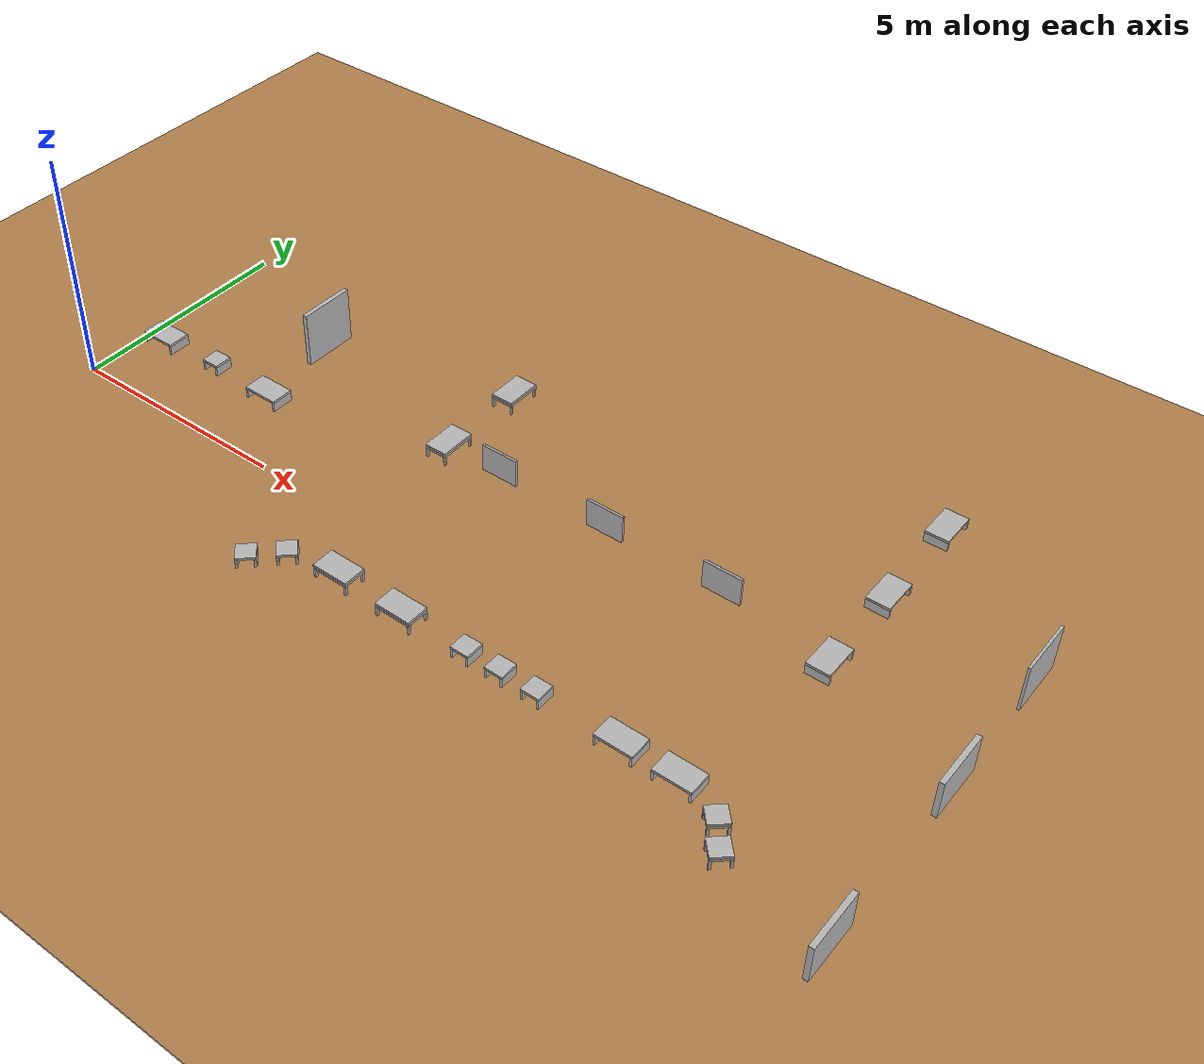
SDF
<sdf version="1.6">
 <world name="default">
  <model name="ground_plane">
   <static>1</static>
   <link name="link">
    <collision name="collision">
     <geometry><plane><normal>0 0 1</normal><size>100 100</size></plane></geometry>
     <surface>
      <contact><collide_bitmask>65535</collide_bitmask></contact>
      <friction><ode><mu>100</mu><mu2>50</mu2></ode></friction>
     </surface>
    </collision>
    <visual name="visual">
     <cast_shadows>0</cast_shadows>
     <geometry><plane><normal>0 0 1</normal><size>100 100</size></plane></geometry>
     <material>
      <script><uri>file://media/materials/scripts/gazebo.material</uri><name>Gazebo/Grey</name></script>
     </material>
    </visual>
   </link>
  </model>
  <model name="wood_floor_100">
   <pose>1.0299 1.49278 0 0 -0 0</pose>
   <link name="Wall_9">
    <collision name="Wall_9_Collision">
     <geometry><box><size>100.01 100 0.01</size></box></geometry>
     <pose>0 0 0.005 0 -0 0</pose>
    </collision>
    <visual name="Wall_9_Visual">
     <pose>0 0 0.005 0 -0 0</pose>
     <geometry><box><size>100.01 100 0.01</size></box></geometry>
     <material>
      <script><uri>file://media/materials/scripts/gazebo.material</uri><name>Gazebo/Wood</name></script>
      <ambient>1 1 1 1</ambient>
     </material>
     <meta><layer>0</layer></meta>
    </visual>
    <pose>-1e-06 -1e-06 0 0 -0 0</pose>
   </link>
   <static>1</static>
  </model>
  <model name="chair1">
   <link name="link">
    <inertial>
     <mass>3</mass>
     <inertia><ixx>1</ixx><ixy>0</ixy><ixz>0</ixz><iyy>1</iyy><iyz>0</iyz><izz>1</izz></inertia>
    </inertial>
    <collision name="left">
     <pose>0 0 0.2 0 -0 1.57</pose>
     <geometry><box><size>0.5 0.05 0.2</size></box></geometry>
    </collision>
    <visual name="visual1">
     <pose>0 0 0.2 0 -0 1.57</pose>
     <geometry><box><size>0.5 0.05 0.2</size></box></geometry>
     <material>
      <script>
       <uri>model://chair1/materials/test_texture_leg.material</uri>
       <name>TestTexturechairleg1</name>
      </script>
     </material>
    </visual>
    <collision name="right">
     <pose>0.75 0 0.2 0 -0 1.57</pose>
     <geometry><box><size>0.5 0.05 0.2</size></box></geometry>
    </collision>
    <visual name="visual2">
     <pose>0.75 0 0.2 0 -0 1.57</pose>
     <geometry><box><size>0.5 0.05 0.2</size></box></geometry>
     <material>
      <script>
       <uri>model://chair1/materials/test_texture_leg.material</uri>
       <name>TestTexturechairleg1</name>
      </script>
     </material>
    </visual>
    <collision name="top">
     <pose>0.375 0 0.325 0 -0 0</pose>
     <geometry><box><size>0.8 0.5 0.05</size></box></geometry>
    </collision>
    <visual name="visual3">
     <pose>0.375 0 0.325 0 -0 0</pose>
     <geometry><box><size>0.8 0.5 0.05</size></box></geometry>
     <material>
      <script>
       <uri>model://chair1/materials/test_texture_plane.material</uri>
       <name>TestTexturechairplane1</name>
      </script>
     </material>
    </visual>
   </link>
   <pose>0.13712 1.60346 -0.089999 2e-06 -0 -0.000142</pose>
  </model>
  <model name="chair2">
   <link name="link">
    <inertial>
     <mass>1.5</mass>
     <inertia><ixx>1</ixx><ixy>0</ixy><ixz>0</ixz><iyy>1</iyy><iyz>0</iyz><izz>1</izz></inertia>
    </inertial>
    <collision name="left">
     <pose>0 0 0.2 0 -0 1.57</pose>
     <geometry><box><size>0.4 0.05 0.2</size></box></geometry>
    </collision>
    <visual name="visual1">
     <pose>0 0 0.2 0 -0 1.57</pose>
     <geometry><box><size>0.4 0.05 0.2</size></box></geometry>
     <material>
      <script>
       <uri>model://chair2/materials/test_texture_leg.material</uri>
       <name>TestTexturechairleg2</name>
      </script>
     </material>
    </visual>
    <collision name="right">
     <pose>0.35 0 0.2 0 -0 1.57</pose>
     <geometry><box><size>0.4 0.05 0.2</size></box></geometry>
    </collision>
    <visual name="visual2">
     <pose>0.35 0 0.2 0 -0 1.57</pose>
     <geometry><box><size>0.4 0.05 0.2</size></box></geometry>
     <material>
      <script>
       <uri>model://chair2/materials/test_texture_leg.material</uri>
       <name>TestTexturechairleg2</name>
      </script>
     </material>
    </visual>
    <collision name="top">
     <pose>0.175 0 0.325 0 -0 0</pose>
     <geometry><box><size>0.4 0.4 0.05</size></box></geometry>
    </collision>
    <visual name="visual3">
     <pose>0.175 0 0.325 0 -0 0</pose>
     <geometry><box><size>0.4 0.4 0.05</size></box></geometry>
     <material>
      <script>
       <uri>model://chair2/materials/test_texture_plane.material</uri>
       <name>TestTexturechairplane2</name>
      </script>
     </material>
    </visual>
   </link>
   <pose>1.8308 1.65353 -0.09 0 0 -3.6e-05</pose>
  </model>
  <model name="chair1_0">
   <link name="link">
    <inertial>
     <mass>3</mass>
     <inertia><ixx>1</ixx><ixy>0</ixy><ixz>0</ixz><iyy>1</iyy><iyz>0</iyz><izz>1</izz></inertia>
    </inertial>
    <collision name="left">
     <pose>0 0 0.2 0 -0 1.57</pose>
     <geometry><box><size>0.5 0.05 0.2</size></box></geometry>
    </collision>
    <visual name="visual1">
     <pose>0 0 0.2 0 -0 1.57</pose>
     <geometry><box><size>0.5 0.05 0.2</size></box></geometry>
     <material>
      <script>
       <uri>model://chair1/materials/test_texture_leg.material</uri>
       <name>TestTexturechairleg1</name>
      </script>
     </material>
    </visual>
    <collision name="right">
     <pose>0.75 0 0.2 0 -0 1.57</pose>
     <geometry><box><size>0.5 0.05 0.2</size></box></geometry>
    </collision>
    <visual name="visual2">
     <pose>0.75 0 0.2 0 -0 1.57</pose>
     <geometry><box><size>0.5 0.05 0.2</size></box></geometry>
     <material>
      <script>
       <uri>model://chair1/materials/test_texture_leg.material</uri>
       <name>TestTexturechairleg1</name>
      </script>
     </material>
    </visual>
    <collision name="top">
     <pose>0.375 0 0.325 0 -0 0</pose>
     <geometry><box><size>0.8 0.5 0.05</size></box></geometry>
    </collision>
    <visual name="visual3">
     <pose>0.375 0 0.325 0 -0 0</pose>
     <geometry><box><size>0.8 0.5 0.05</size></box></geometry>
     <material>
      <script>
       <uri>model://chair1/materials/test_texture_plane.material</uri>
       <name>TestTexturechairplane1</name>
      </script>
     </material>
    </visual>
   </link>
   <pose>3.20048 1.6029 -0.090007 -2e-06 -1e-06 -0.000678</pose>
  </model>
  <model name="chair2_0">
   <link name="link">
    <inertial>
     <mass>1.5</mass>
     <inertia><ixx>1</ixx><ixy>0</ixy><ixz>0</ixz><iyy>1</iyy><iyz>0</iyz><izz>1</izz></inertia>
    </inertial>
    <collision name="left">
     <pose>0 0 0.2 0 -0 1.57</pose>
     <geometry><box><size>0.4 0.05 0.2</size></box></geometry>
    </collision>
    <visual name="visual1">
     <pose>0 0 0.2 0 -0 1.57</pose>
     <geometry><box><size>0.4 0.05 0.2</size></box></geometry>
     <material>
      <script>
       <uri>model://chair2/materials/test_texture_leg.material</uri>
       <name>TestTexturechairleg2</name>
      </script>
     </material>
    </visual>
    <collision name="right">
     <pose>0.35 0 0.2 0 -0 1.57</pose>
     <geometry><box><size>0.4 0.05 0.2</size></box></geometry>
    </collision>
    <visual name="visual2">
     <pose>0.35 0 0.2 0 -0 1.57</pose>
     <geometry><box><size>0.4 0.05 0.2</size></box></geometry>
     <material>
      <script>
       <uri>model://chair2/materials/test_texture_leg.material</uri>
       <name>TestTexturechairleg2</name>
      </script>
     </material>
    </visual>
    <collision name="top">
     <pose>0.175 0 0.325 0 -0 0</pose>
     <geometry><box><size>0.4 0.4 0.05</size></box></geometry>
    </collision>
    <visual name="visual3">
     <pose>0.175 0 0.325 0 -0 0</pose>
     <geometry><box><size>0.4 0.4 0.05</size></box></geometry>
     <material>
      <script>
       <uri>model://chair2/materials/test_texture_plane.material</uri>
       <name>TestTexturechairplane2</name>
      </script>
     </material>
    </visual>
   </link>
   <pose>11.1966 -1.36081 -0.09001 0 -0 -6e-06</pose>
  </model>
  <model name="chair2_1">
   <link name="link">
    <inertial>
     <mass>1.5</mass>
     <inertia><ixx>1</ixx><ixy>0</ixy><ixz>0</ixz><iyy>1</iyy><iyz>0</iyz><izz>1</izz></inertia>
    </inertial>
    <collision name="left">
     <pose>0 0 0.2 0 -0 1.57</pose>
     <geometry><box><size>0.4 0.05 0.2</size></box></geometry>
    </collision>
    <visual name="visual1">
     <pose>0 0 0.2 0 -0 1.57</pose>
     <geometry><box><size>0.4 0.05 0.2</size></box></geometry>
     <material>
      <script>
       <uri>model://chair2/materials/test_texture_leg.material</uri>
       <name>TestTexturechairleg2</name>
      </script>
     </material>
    </visual>
    <collision name="right">
     <pose>0.35 0 0.2 0 -0 1.57</pose>
     <geometry><box><size>0.4 0.05 0.2</size></box></geometry>
    </collision>
    <visual name="visual2">
     <pose>0.35 0 0.2 0 -0 1.57</pose>
     <geometry><box><size>0.4 0.05 0.2</size></box></geometry>
     <material>
      <script>
       <uri>model://chair2/materials/test_texture_leg.material</uri>
       <name>TestTexturechairleg2</name>
      </script>
     </material>
    </visual>
    <collision name="top">
     <pose>0.175 0 0.325 0 -0 0</pose>
     <geometry><box><size>0.4 0.4 0.05</size></box></geometry>
    </collision>
    <visual name="visual3">
     <pose>0.175 0 0.325 0 -0 0</pose>
     <geometry><box><size>0.4 0.4 0.05</size></box></geometry>
     <material>
      <script>
       <uri>model://chair2/materials/test_texture_plane.material</uri>
       <name>TestTexturechairplane2</name>
      </script>
     </material>
    </visual>
   </link>
   <pose>11.9632 -1.36081 -0.09 0 0 -5e-06</pose>
  </model>
  <model name="chair2_2">
   <link name="link">
    <inertial>
     <mass>1.5</mass>
     <inertia><ixx>1</ixx><ixy>0</ixy><ixz>0</ixz><iyy>1</iyy><iyz>0</iyz><izz>1</izz></inertia>
    </inertial>
    <collision name="left">
     <pose>0 0 0.2 0 -0 1.57</pose>
     <geometry><box><size>0.4 0.05 0.2</size></box></geometry>
    </collision>
    <visual name="visual1">
     <pose>0 0 0.2 0 -0 1.57</pose>
     <geometry><box><size>0.4 0.05 0.2</size></box></geometry>
     <material>
      <script>
       <uri>model://chair2/materials/test_texture_leg.material</uri>
       <name>TestTexturechairleg2</name>
      </script>
     </material>
    </visual>
    <collision name="right">
     <pose>0.35 0 0.2 0 -0 1.57</pose>
     <geometry><box><size>0.4 0.05 0.2</size></box></geometry>
    </collision>
    <visual name="visual2">
     <pose>0.35 0 0.2 0 -0 1.57</pose>
     <geometry><box><size>0.4 0.05 0.2</size></box></geometry>
     <material>
      <script>
       <uri>model://chair2/materials/test_texture_leg.material</uri>
       <name>TestTexturechairleg2</name>
      </script>
     </material>
    </visual>
    <collision name="top">
     <pose>0.175 0 0.325 0 -0 0</pose>
     <geometry><box><size>0.4 0.4 0.05</size></box></geometry>
    </collision>
    <visual name="visual3">
     <pose>0.175 0 0.325 0 -0 0</pose>
     <geometry><box><size>0.4 0.4 0.05</size></box></geometry>
     <material>
      <script>
       <uri>model://chair2/materials/test_texture_plane.material</uri>
       <name>TestTexturechairplane2</name>
      </script>
     </material>
    </visual>
   </link>
   <pose>12.7574 -1.36081 -0.09 0 -0 0</pose>
  </model>
  <model name="chair1_3">
   <link name="link">
    <inertial>
     <mass>3</mass>
     <inertia><ixx>1</ixx><ixy>0</ixy><ixz>0</ixz><iyy>1</iyy><iyz>0</iyz><izz>1</izz></inertia>
    </inertial>
    <collision name="left">
     <pose>0 0 0.2 0 -0 1.57</pose>
     <geometry><box><size>0.5 0.05 0.2</size></box></geometry>
    </collision>
    <visual name="visual1">
     <pose>0 0 0.2 0 -0 1.57</pose>
     <geometry><box><size>0.5 0.05 0.2</size></box></geometry>
     <material>
      <script>
       <uri>model://chair1/materials/test_texture_leg.material</uri>
       <name>TestTexturechairleg1</name>
      </script>
     </material>
    </visual>
    <collision name="right">
     <pose>0.75 0 0.2 0 -0 1.57</pose>
     <geometry><box><size>0.5 0.05 0.2</size></box></geometry>
    </collision>
    <visual name="visual2">
     <pose>0.75 0 0.2 0 -0 1.57</pose>
     <geometry><box><size>0.5 0.05 0.2</size></box></geometry>
     <material>
      <script>
       <uri>model://chair1/materials/test_texture_leg.material</uri>
       <name>TestTexturechairleg1</name>
      </script>
     </material>
    </visual>
    <collision name="top">
     <pose>0.375 0 0.325 0 -0 0</pose>
     <geometry><box><size>0.8 0.5 0.05</size></box></geometry>
    </collision>
    <visual name="visual3">
     <pose>0.375 0 0.325 0 -0 0</pose>
     <geometry><box><size>0.8 0.5 0.05</size></box></geometry>
     <material>
      <script>
       <uri>model://chair1/materials/test_texture_plane.material</uri>
       <name>TestTexturechairplane1</name>
      </script>
     </material>
    </visual>
   </link>
   <pose>14.3179 -1.33335 -0.090007 -2e-06 -1e-06 0.00158</pose>
  </model>
  <model name="chair1_4">
   <link name="link">
    <inertial>
     <mass>3</mass>
     <inertia><ixx>1</ixx><ixy>0</ixy><ixz>0</ixz><iyy>1</iyy><iyz>0</iyz><izz>1</izz></inertia>
    </inertial>
    <collision name="left">
     <pose>0 0 0.2 0 -0 1.57</pose>
     <geometry><box><size>0.5 0.05 0.2</size></box></geometry>
    </collision>
    <visual name="visual1">
     <pose>0 0 0.2 0 -0 1.57</pose>
     <geometry><box><size>0.5 0.05 0.2</size></box></geometry>
     <material>
      <script>
       <uri>model://chair1/materials/test_texture_leg.material</uri>
       <name>TestTexturechairleg1</name>
      </script>
     </material>
    </visual>
    <collision name="right">
     <pose>0.75 0 0.2 0 -0 1.57</pose>
     <geometry><box><size>0.5 0.05 0.2</size></box></geometry>
    </collision>
    <visual name="visual2">
     <pose>0.75 0 0.2 0 -0 1.57</pose>
     <geometry><box><size>0.5 0.05 0.2</size></box></geometry>
     <material>
      <script>
       <uri>model://chair1/materials/test_texture_leg.material</uri>
       <name>TestTexturechairleg1</name>
      </script>
     </material>
    </visual>
    <collision name="top">
     <pose>0.375 0 0.325 0 -0 0</pose>
     <geometry><box><size>0.8 0.5 0.05</size></box></geometry>
    </collision>
    <visual name="visual3">
     <pose>0.375 0 0.325 0 -0 0</pose>
     <geometry><box><size>0.8 0.5 0.05</size></box></geometry>
     <material>
      <script>
       <uri>model://chair1/materials/test_texture_plane.material</uri>
       <name>TestTexturechairplane1</name>
      </script>
     </material>
    </visual>
   </link>
   <pose>15.4952 -1.33335 -0.089999 2e-06 -0 0.001563</pose>
  </model>
  <model name="chair4">
   <link name="link">
    <inertial>
     <mass>1.5</mass>
     <inertia><ixx>1</ixx><ixy>0</ixy><ixz>0</ixz><iyy>1</iyy><iyz>0</iyz><izz>1</izz></inertia>
    </inertial>
    <collision name="left1">
     <pose>0 0.175 0.2 0 -0 1.57</pose>
     <geometry><box><size>0.05 0.05 0.2</size></box></geometry>
    </collision>
    <visual name="visual1">
     <pose>0 0.175 0.2 0 -0 1.57</pose>
     <geometry><box><size>0.05 0.05 0.2</size></box></geometry>
     <material>
      <script>
       <uri>model://chair4/materials/test_texture_leg.material</uri>
       <name>TestTexturechairleg4</name>
      </script>
     </material>
    </visual>
    <collision name="right1">
     <pose>0.35 0.175 0.2 0 -0 1.57</pose>
     <geometry><box><size>0.05 0.05 0.2</size></box></geometry>
    </collision>
    <visual name="visual2">
     <pose>0.35 0.175 0.2 0 -0 1.57</pose>
     <geometry><box><size>0.05 0.05 0.2</size></box></geometry>
     <material>
      <script>
       <uri>model://chair4/materials/test_texture_leg.material</uri>
       <name>TestTexturechairleg4</name>
      </script>
     </material>
    </visual>
    <collision name="left2">
     <pose>0 -0.175 0.2 0 -0 1.57</pose>
     <geometry><box><size>0.05 0.05 0.2</size></box></geometry>
    </collision>
    <visual name="visual3">
     <pose>0 -0.175 0.2 0 -0 1.57</pose>
     <geometry><box><size>0.05 0.05 0.2</size></box></geometry>
     <material>
      <script>
       <uri>model://chair4/materials/test_texture_leg.material</uri>
       <name>TestTexturechairleg4</name>
      </script>
     </material>
    </visual>
    <collision name="right2">
     <pose>0.35 -0.175 0.2 0 -0 1.57</pose>
     <geometry><box><size>0.05 0.05 0.2</size></box></geometry>
    </collision>
    <visual name="visual4">
     <pose>0.35 -0.175 0.2 0 -0 1.57</pose>
     <geometry><box><size>0.05 0.05 0.2</size></box></geometry>
     <material>
      <script>
       <uri>model://chair4/materials/test_texture_leg.material</uri>
       <name>TestTexturechairleg4</name>
      </script>
     </material>
    </visual>
    <collision name="top">
     <pose>0.175 0 0.375 0 -0 0</pose>
     <geometry><box><size>0.4 0.4 0.05</size></box></geometry>
    </collision>
    <visual name="visual11">
     <pose>0.175 0 0.375 0 -0 0</pose>
     <geometry><box><size>0.4 0.4 0.05</size></box></geometry>
     <material>
      <script>
       <uri>model://chair4/materials/test_texture_plane.material</uri>
       <name>TestTexturechairplane4</name>
      </script>
     </material>
    </visual>
    <collision name="top2">
     <pose>0.175 0 0.325 0 -0 0</pose>
     <geometry><box><size>0.4 0.4 0.05</size></box></geometry>
    </collision>
    <visual name="visual12">
     <pose>0.175 0 0.325 0 -0 0</pose>
     <geometry><box><size>0.4 0.4 0.05</size></box></geometry>
     <material>
      <script>
       <uri>model://chair4/materials/test_texture_leg.material</uri>
       <name>TestTexturechairleg4</name>
      </script>
     </material>
    </visual>
   </link>
   <pose>16.7096 -1.8199 -0.09 -0 -1e-06 0.749723</pose>
  </model>
  <model name="chair4_clone">
   <link name="link">
    <inertial>
     <mass>1.5</mass>
     <inertia><ixx>1</ixx><ixy>0</ixy><ixz>0</ixz><iyy>1</iyy><iyz>0</iyz><izz>1</izz></inertia>
    </inertial>
    <collision name="left1">
     <pose>0 0.175 0.2 0 -0 1.57</pose>
     <geometry><box><size>0.05 0.05 0.2</size></box></geometry>
    </collision>
    <visual name="visual1">
     <pose>0 0.175 0.2 0 -0 1.57</pose>
     <geometry><box><size>0.05 0.05 0.2</size></box></geometry>
     <material>
      <script>
       <uri>model://chair4/materials/test_texture_leg.material</uri>
       <name>TestTexturechairleg4</name>
      </script>
     </material>
    </visual>
    <collision name="right1">
     <pose>0.35 0.175 0.2 0 -0 1.57</pose>
     <geometry><box><size>0.05 0.05 0.2</size></box></geometry>
    </collision>
    <visual name="visual2">
     <pose>0.35 0.175 0.2 0 -0 1.57</pose>
     <geometry><box><size>0.05 0.05 0.2</size></box></geometry>
     <material>
      <script>
       <uri>model://chair4/materials/test_texture_leg.material</uri>
       <name>TestTexturechairleg4</name>
      </script>
     </material>
    </visual>
    <collision name="left2">
     <pose>0 -0.175 0.2 0 -0 1.57</pose>
     <geometry><box><size>0.05 0.05 0.2</size></box></geometry>
    </collision>
    <visual name="visual3">
     <pose>0 -0.175 0.2 0 -0 1.57</pose>
     <geometry><box><size>0.05 0.05 0.2</size></box></geometry>
     <material>
      <script>
       <uri>model://chair4/materials/test_texture_leg.material</uri>
       <name>TestTexturechairleg4</name>
      </script>
     </material>
    </visual>
    <collision name="right2">
     <pose>0.35 -0.175 0.2 0 -0 1.57</pose>
     <geometry><box><size>0.05 0.05 0.2</size></box></geometry>
    </collision>
    <visual name="visual4">
     <pose>0.35 -0.175 0.2 0 -0 1.57</pose>
     <geometry><box><size>0.05 0.05 0.2</size></box></geometry>
     <material>
      <script>
       <uri>model://chair4/materials/test_texture_leg.material</uri>
       <name>TestTexturechairleg4</name>
      </script>
     </material>
    </visual>
    <collision name="top">
     <pose>0.175 0 0.375 0 -0 0</pose>
     <geometry><box><size>0.4 0.4 0.05</size></box></geometry>
    </collision>
    <visual name="visual11">
     <pose>0.175 0 0.375 0 -0 0</pose>
     <geometry><box><size>0.4 0.4 0.05</size></box></geometry>
     <material>
      <script>
       <uri>model://chair4/materials/test_texture_plane.material</uri>
       <name>TestTexturechairplane4</name>
      </script>
     </material>
    </visual>
    <collision name="top2">
     <pose>0.175 0 0.325 0 -0 0</pose>
     <geometry><box><size>0.4 0.4 0.05</size></box></geometry>
    </collision>
    <visual name="visual12">
     <pose>0.175 0 0.325 0 -0 0</pose>
     <geometry><box><size>0.4 0.4 0.05</size></box></geometry>
     <material>
      <script>
       <uri>model://chair4/materials/test_texture_leg.material</uri>
       <name>TestTexturechairleg4</name>
      </script>
     </material>
    </visual>
   </link>
   <pose>17.0857 -2.31775 -0.090006 -1e-06 -1e-06 0.749733</pose>
  </model>
  <model name="chair2_3_clone_0">
   <link name="link">
    <inertial>
     <mass>1.5</mass>
     <inertia><ixx>1</ixx><ixy>0</ixy><ixz>0</ixz><iyy>1</iyy><iyz>0</iyz><izz>1</izz></inertia>
    </inertial>
    <collision name="left">
     <pose>0 0 0.2 0 -0 1.57</pose>
     <geometry><box><size>0.4 0.05 0.2</size></box></geometry>
    </collision>
    <visual name="visual1">
     <pose>0 0 0.2 0 -0 1.57</pose>
     <geometry><box><size>0.4 0.05 0.2</size></box></geometry>
     <material>
      <script>
       <uri>model://chair2/materials/test_texture_leg.material</uri>
       <name>TestTexturechairleg2</name>
      </script>
     </material>
    </visual>
    <collision name="right">
     <pose>0.35 0 0.2 0 -0 1.57</pose>
     <geometry><box><size>0.4 0.05 0.2</size></box></geometry>
    </collision>
    <visual name="visual2">
     <pose>0.35 0 0.2 0 -0 1.57</pose>
     <geometry><box><size>0.4 0.05 0.2</size></box></geometry>
     <material>
      <script>
       <uri>model://chair2/materials/test_texture_leg.material</uri>
       <name>TestTexturechairleg2</name>
      </script>
     </material>
    </visual>
    <collision name="top">
     <pose>0.175 0 0.325 0 -0 0</pose>
     <geometry><box><size>0.4 0.4 0.05</size></box></geometry>
    </collision>
    <visual name="visual3">
     <pose>0.175 0 0.325 0 -0 0</pose>
     <geometry><box><size>0.4 0.4 0.05</size></box></geometry>
     <material>
      <script>
       <uri>model://chair2/materials/test_texture_plane.material</uri>
       <name>TestTexturechairplane2</name>
      </script>
     </material>
    </visual>
   </link>
   <pose>7.07857 -1.66644 -0.090009 0 -0 0.750017</pose>
  </model>
  <model name="chair2_3_clone_clone">
   <link name="link">
    <inertial>
     <mass>1.5</mass>
     <inertia><ixx>1</ixx><ixy>0</ixy><ixz>0</ixz><iyy>1</iyy><iyz>0</iyz><izz>1</izz></inertia>
    </inertial>
    <collision name="left">
     <pose>0 0 0.2 0 -0 1.57</pose>
     <geometry><box><size>0.4 0.05 0.2</size></box></geometry>
    </collision>
    <visual name="visual1">
     <pose>0 0 0.2 0 -0 1.57</pose>
     <geometry><box><size>0.4 0.05 0.2</size></box></geometry>
     <material>
      <script>
       <uri>model://chair2/materials/test_texture_leg.material</uri>
       <name>TestTexturechairleg2</name>
      </script>
     </material>
    </visual>
    <collision name="right">
     <pose>0.35 0 0.2 0 -0 1.57</pose>
     <geometry><box><size>0.4 0.05 0.2</size></box></geometry>
    </collision>
    <visual name="visual2">
     <pose>0.35 0 0.2 0 -0 1.57</pose>
     <geometry><box><size>0.4 0.05 0.2</size></box></geometry>
     <material>
      <script>
       <uri>model://chair2/materials/test_texture_leg.material</uri>
       <name>TestTexturechairleg2</name>
      </script>
     </material>
    </visual>
    <collision name="top">
     <pose>0.175 0 0.325 0 -0 0</pose>
     <geometry><box><size>0.4 0.4 0.05</size></box></geometry>
    </collision>
    <visual name="visual3">
     <pose>0.175 0 0.325 0 -0 0</pose>
     <geometry><box><size>0.4 0.4 0.05</size></box></geometry>
     <material>
      <script>
       <uri>model://chair2/materials/test_texture_plane.material</uri>
       <name>TestTexturechairplane2</name>
      </script>
     </material>
    </visual>
   </link>
   <pose>6.54207 -2.20214 -0.090009 0 -0 0.750002</pose>
  </model>
  <model name="chair3_clone_2">
   <link name="link">
    <inertial>
     <mass>3</mass>
     <inertia><ixx>1</ixx><ixy>0</ixy><ixz>0</ixz><iyy>1</iyy><iyz>0</iyz><izz>1</izz></inertia>
    </inertial>
    <collision name="left1">
     <pose>0 0.225 0.2 0 -0 1.57</pose>
     <geometry><box><size>0.05 0.05 0.2</size></box></geometry>
    </collision>
    <visual name="visual1">
     <pose>0 0.225 0.2 0 -0 1.57</pose>
     <geometry><box><size>0.05 0.05 0.2</size></box></geometry>
     <material>
      <script>
       <uri>model://chair3/materials/test_texture_leg.material</uri>
       <name>TestTexturechairleg3</name>
      </script>
     </material>
    </visual>
    <collision name="right1">
     <pose>0.75 0.225 0.2 0 -0 1.57</pose>
     <geometry><box><size>0.05 0.05 0.2</size></box></geometry>
    </collision>
    <visual name="visual2">
     <pose>0.75 0.225 0.2 0 -0 1.57</pose>
     <geometry><box><size>0.05 0.05 0.2</size></box></geometry>
     <material>
      <script>
       <uri>model://chair3/materials/test_texture_leg.material</uri>
       <name>TestTexturechairleg3</name>
      </script>
     </material>
    </visual>
    <collision name="left2">
     <pose>0 -0.225 0.2 0 -0 1.57</pose>
     <geometry><box><size>0.05 0.05 0.2</size></box></geometry>
    </collision>
    <visual name="visual3">
     <pose>0 -0.225 0.2 0 -0 1.57</pose>
     <geometry><box><size>0.05 0.05 0.2</size></box></geometry>
     <material>
      <script>
       <uri>model://chair3/materials/test_texture_leg.material</uri>
       <name>TestTexturechairleg3</name>
      </script>
     </material>
    </visual>
    <collision name="right2">
     <pose>0.75 -0.225 0.2 0 -0 1.57</pose>
     <geometry><box><size>0.05 0.05 0.2</size></box></geometry>
    </collision>
    <visual name="visual4">
     <pose>0.75 -0.225 0.2 0 -0 1.57</pose>
     <geometry><box><size>0.05 0.05 0.2</size></box></geometry>
     <material>
      <script>
       <uri>model://chair3/materials/test_texture_leg.material</uri>
       <name>TestTexturechairleg3</name>
      </script>
     </material>
    </visual>
    <collision name="top">
     <pose>0.375 0 0.375 0 -0 0</pose>
     <geometry><box><size>0.8 0.5 0.05</size></box></geometry>
    </collision>
    <visual name="visual11">
     <pose>0.375 0 0.375 0 -0 0</pose>
     <geometry><box><size>0.8 0.5 0.05</size></box></geometry>
     <material>
      <script>
       <uri>model://chair3/materials/test_texture_plane.material</uri>
       <name>TestTexturechairplane3</name>
      </script>
     </material>
    </visual>
    <collision name="top2">
     <pose>0.375 0 0.325 0 -0 0</pose>
     <geometry><box><size>0.8 0.5 0.05</size></box></geometry>
    </collision>
    <visual name="visual12">
     <pose>0.375 0 0.325 0 -0 0</pose>
     <geometry><box><size>0.8 0.5 0.05</size></box></geometry>
     <material>
      <script>
       <uri>model://chair3/materials/test_texture_leg.material</uri>
       <name>TestTexturechairleg3</name>
      </script>
     </material>
    </visual>
   </link>
   <pose>7.54374 2.27547 -0.090008 2e-06 -0 1.56996</pose>
  </model>
  <model name="chair3_clone_3">
   <link name="link">
    <inertial>
     <mass>3</mass>
     <inertia><ixx>1</ixx><ixy>0</ixy><ixz>0</ixz><iyy>1</iyy><iyz>0</iyz><izz>1</izz></inertia>
    </inertial>
    <collision name="left1">
     <pose>0 0.225 0.2 0 -0 1.57</pose>
     <geometry><box><size>0.05 0.05 0.2</size></box></geometry>
    </collision>
    <visual name="visual1">
     <pose>0 0.225 0.2 0 -0 1.57</pose>
     <geometry><box><size>0.05 0.05 0.2</size></box></geometry>
     <material>
      <script>
       <uri>model://chair3/materials/test_texture_leg.material</uri>
       <name>TestTexturechairleg3</name>
      </script>
     </material>
    </visual>
    <collision name="right1">
     <pose>0.75 0.225 0.2 0 -0 1.57</pose>
     <geometry><box><size>0.05 0.05 0.2</size></box></geometry>
    </collision>
    <visual name="visual2">
     <pose>0.75 0.225 0.2 0 -0 1.57</pose>
     <geometry><box><size>0.05 0.05 0.2</size></box></geometry>
     <material>
      <script>
       <uri>model://chair3/materials/test_texture_leg.material</uri>
       <name>TestTexturechairleg3</name>
      </script>
     </material>
    </visual>
    <collision name="left2">
     <pose>0 -0.225 0.2 0 -0 1.57</pose>
     <geometry><box><size>0.05 0.05 0.2</size></box></geometry>
    </collision>
    <visual name="visual3">
     <pose>0 -0.225 0.2 0 -0 1.57</pose>
     <geometry><box><size>0.05 0.05 0.2</size></box></geometry>
     <material>
      <script>
       <uri>model://chair3/materials/test_texture_leg.material</uri>
       <name>TestTexturechairleg3</name>
      </script>
     </material>
    </visual>
    <collision name="right2">
     <pose>0.75 -0.225 0.2 0 -0 1.57</pose>
     <geometry><box><size>0.05 0.05 0.2</size></box></geometry>
    </collision>
    <visual name="visual4">
     <pose>0.75 -0.225 0.2 0 -0 1.57</pose>
     <geometry><box><size>0.05 0.05 0.2</size></box></geometry>
     <material>
      <script>
       <uri>model://chair3/materials/test_texture_leg.material</uri>
       <name>TestTexturechairleg3</name>
      </script>
     </material>
    </visual>
    <collision name="top">
     <pose>0.375 0 0.375 0 -0 0</pose>
     <geometry><box><size>0.8 0.5 0.05</size></box></geometry>
    </collision>
    <visual name="visual11">
     <pose>0.375 0 0.375 0 -0 0</pose>
     <geometry><box><size>0.8 0.5 0.05</size></box></geometry>
     <material>
      <script>
       <uri>model://chair3/materials/test_texture_plane.material</uri>
       <name>TestTexturechairplane3</name>
      </script>
     </material>
    </visual>
    <collision name="top2">
     <pose>0.375 0 0.325 0 -0 0</pose>
     <geometry><box><size>0.8 0.5 0.05</size></box></geometry>
    </collision>
    <visual name="visual12">
     <pose>0.375 0 0.325 0 -0 0</pose>
     <geometry><box><size>0.8 0.5 0.05</size></box></geometry>
     <material>
      <script>
       <uri>model://chair3/materials/test_texture_leg.material</uri>
       <name>TestTexturechairleg3</name>
      </script>
     </material>
    </visual>
   </link>
   <pose>7.5617 4.31732 -0.090008 1e-06 -0 1.56995</pose>
  </model>
  <model name="chair1_9_clone_1">
   <link name="link">
    <inertial>
     <mass>3</mass>
     <inertia><ixx>1</ixx><ixy>0</ixy><ixz>0</ixz><iyy>1</iyy><iyz>0</iyz><izz>1</izz></inertia>
    </inertial>
    <collision name="left">
     <pose>0 0 0.2 0 -0 1.57</pose>
     <geometry><box><size>0.5 0.05 0.2</size></box></geometry>
    </collision>
    <visual name="visual1">
     <pose>0 0 0.2 0 -0 1.57</pose>
     <geometry><box><size>0.5 0.05 0.2</size></box></geometry>
     <material>
      <script>
       <uri>model://chair1/materials/test_texture_leg.material</uri>
       <name>TestTexturechairleg1</name>
      </script>
     </material>
    </visual>
    <collision name="right">
     <pose>0.75 0 0.2 0 -0 1.57</pose>
     <geometry><box><size>0.5 0.05 0.2</size></box></geometry>
    </collision>
    <visual name="visual2">
     <pose>0.75 0 0.2 0 -0 1.57</pose>
     <geometry><box><size>0.5 0.05 0.2</size></box></geometry>
     <material>
      <script>
       <uri>model://chair1/materials/test_texture_leg.material</uri>
       <name>TestTexturechairleg1</name>
      </script>
     </material>
    </visual>
    <collision name="top">
     <pose>0.375 0 0.325 0 -0 0</pose>
     <geometry><box><size>0.8 0.5 0.05</size></box></geometry>
    </collision>
    <visual name="visual3">
     <pose>0.375 0 0.325 0 -0 0</pose>
     <geometry><box><size>0.8 0.5 0.05</size></box></geometry>
     <material>
      <script>
       <uri>model://chair1/materials/test_texture_plane.material</uri>
       <name>TestTexturechairplane1</name>
      </script>
     </material>
    </visual>
   </link>
   <pose>16.4067 6.26739 -0.090001 5e-06 -0 1.57132</pose>
  </model>
  <model name="chair1_9_clone_2">
   <link name="link">
    <inertial>
     <mass>3</mass>
     <inertia><ixx>1</ixx><ixy>0</ixy><ixz>0</ixz><iyy>1</iyy><iyz>0</iyz><izz>1</izz></inertia>
    </inertial>
    <collision name="left">
     <pose>0 0 0.2 0 -0 1.57</pose>
     <geometry><box><size>0.5 0.05 0.2</size></box></geometry>
    </collision>
    <visual name="visual1">
     <pose>0 0 0.2 0 -0 1.57</pose>
     <geometry><box><size>0.5 0.05 0.2</size></box></geometry>
     <material>
      <script>
       <uri>model://chair1/materials/test_texture_leg.material</uri>
       <name>TestTexturechairleg1</name>
      </script>
     </material>
    </visual>
    <collision name="right">
     <pose>0.75 0 0.2 0 -0 1.57</pose>
     <geometry><box><size>0.5 0.05 0.2</size></box></geometry>
    </collision>
    <visual name="visual2">
     <pose>0.75 0 0.2 0 -0 1.57</pose>
     <geometry><box><size>0.5 0.05 0.2</size></box></geometry>
     <material>
      <script>
       <uri>model://chair1/materials/test_texture_leg.material</uri>
       <name>TestTexturechairleg1</name>
      </script>
     </material>
    </visual>
    <collision name="top">
     <pose>0.375 0 0.325 0 -0 0</pose>
     <geometry><box><size>0.8 0.5 0.05</size></box></geometry>
    </collision>
    <visual name="visual3">
     <pose>0.375 0 0.325 0 -0 0</pose>
     <geometry><box><size>0.8 0.5 0.05</size></box></geometry>
     <material>
      <script>
       <uri>model://chair1/materials/test_texture_plane.material</uri>
       <name>TestTexturechairplane1</name>
      </script>
     </material>
    </visual>
   </link>
   <pose>16.4322 4.05249 -0.090001 5e-06 -0 1.5713</pose>
  </model>
  <model name="chair1_9_clone_3">
   <link name="link">
    <inertial>
     <mass>3</mass>
     <inertia><ixx>1</ixx><ixy>0</ixy><ixz>0</ixz><iyy>1</iyy><iyz>0</iyz><izz>1</izz></inertia>
    </inertial>
    <collision name="left">
     <pose>0 0 0.2 0 -0 1.57</pose>
     <geometry><box><size>0.5 0.05 0.2</size></box></geometry>
    </collision>
    <visual name="visual1">
     <pose>0 0 0.2 0 -0 1.57</pose>
     <geometry><box><size>0.5 0.05 0.2</size></box></geometry>
     <material>
      <script>
       <uri>model://chair1/materials/test_texture_leg.material</uri>
       <name>TestTexturechairleg1</name>
      </script>
     </material>
    </visual>
    <collision name="right">
     <pose>0.75 0 0.2 0 -0 1.57</pose>
     <geometry><box><size>0.5 0.05 0.2</size></box></geometry>
    </collision>
    <visual name="visual2">
     <pose>0.75 0 0.2 0 -0 1.57</pose>
     <geometry><box><size>0.5 0.05 0.2</size></box></geometry>
     <material>
      <script>
       <uri>model://chair1/materials/test_texture_leg.material</uri>
       <name>TestTexturechairleg1</name>
      </script>
     </material>
    </visual>
    <collision name="top">
     <pose>0.375 0 0.325 0 -0 0</pose>
     <geometry><box><size>0.8 0.5 0.05</size></box></geometry>
    </collision>
    <visual name="visual3">
     <pose>0.375 0 0.325 0 -0 0</pose>
     <geometry><box><size>0.8 0.5 0.05</size></box></geometry>
     <material>
      <script>
       <uri>model://chair1/materials/test_texture_plane.material</uri>
       <name>TestTexturechairplane1</name>
      </script>
     </material>
    </visual>
   </link>
   <pose>16.4322 2.00979 -0.090001 5e-06 -0 1.57129</pose>
  </model>
  <model name="chair3_0">
   <link name="link">
    <inertial>
     <mass>3</mass>
     <inertia><ixx>1</ixx><ixy>0</ixy><ixz>0</ixz><iyy>1</iyy><iyz>0</iyz><izz>1</izz></inertia>
    </inertial>
    <collision name="left1">
     <pose>0 0.225 0.2 0 -0 1.57</pose>
     <geometry><box><size>0.05 0.05 0.2</size></box></geometry>
    </collision>
    <visual name="visual1">
     <pose>0 0.225 0.2 0 -0 1.57</pose>
     <geometry><box><size>0.05 0.05 0.2</size></box></geometry>
     <material>
      <script>
       <uri>model://chair3/materials/test_texture_leg.material</uri>
       <name>TestTexturechairleg3</name>
      </script>
     </material>
    </visual>
    <collision name="right1">
     <pose>0.75 0.225 0.2 0 -0 1.57</pose>
     <geometry><box><size>0.05 0.05 0.2</size></box></geometry>
    </collision>
    <visual name="visual2">
     <pose>0.75 0.225 0.2 0 -0 1.57</pose>
     <geometry><box><size>0.05 0.05 0.2</size></box></geometry>
     <material>
      <script>
       <uri>model://chair3/materials/test_texture_leg.material</uri>
       <name>TestTexturechairleg3</name>
      </script>
     </material>
    </visual>
    <collision name="left2">
     <pose>0 -0.225 0.2 0 -0 1.57</pose>
     <geometry><box><size>0.05 0.05 0.2</size></box></geometry>
    </collision>
    <visual name="visual3">
     <pose>0 -0.225 0.2 0 -0 1.57</pose>
     <geometry><box><size>0.05 0.05 0.2</size></box></geometry>
     <material>
      <script>
       <uri>model://chair3/materials/test_texture_leg.material</uri>
       <name>TestTexturechairleg3</name>
      </script>
     </material>
    </visual>
    <collision name="right2">
     <pose>0.75 -0.225 0.2 0 -0 1.57</pose>
     <geometry><box><size>0.05 0.05 0.2</size></box></geometry>
    </collision>
    <visual name="visual4">
     <pose>0.75 -0.225 0.2 0 -0 1.57</pose>
     <geometry><box><size>0.05 0.05 0.2</size></box></geometry>
     <material>
      <script>
       <uri>model://chair3/materials/test_texture_leg.material</uri>
       <name>TestTexturechairleg3</name>
      </script>
     </material>
    </visual>
    <collision name="top">
     <pose>0.375 0 0.375 0 -0 0</pose>
     <geometry><box><size>0.8 0.5 0.05</size></box></geometry>
    </collision>
    <visual name="visual11">
     <pose>0.375 0 0.375 0 -0 0</pose>
     <geometry><box><size>0.8 0.5 0.05</size></box></geometry>
     <material>
      <script>
       <uri>model://chair3/materials/test_texture_plane.material</uri>
       <name>TestTexturechairplane3</name>
      </script>
     </material>
    </visual>
    <collision name="top2">
     <pose>0.375 0 0.325 0 -0 0</pose>
     <geometry><box><size>0.8 0.5 0.05</size></box></geometry>
    </collision>
    <visual name="visual12">
     <pose>0.375 0 0.325 0 -0 0</pose>
     <geometry><box><size>0.8 0.5 0.05</size></box></geometry>
     <material>
      <script>
       <uri>model://chair3/materials/test_texture_leg.material</uri>
       <name>TestTexturechairleg3</name>
      </script>
     </material>
    </visual>
   </link>
   <pose>7.95822 -1.35638 -0.090009 1e-06 -0 -1.1e-05</pose>
  </model>
  <model name="chair3_0_clone">
   <link name="link">
    <inertial>
     <mass>3</mass>
     <inertia><ixx>1</ixx><ixy>0</ixy><ixz>0</ixz><iyy>1</iyy><iyz>0</iyz><izz>1</izz></inertia>
    </inertial>
    <collision name="left1">
     <pose>0 0.225 0.2 0 -0 1.57</pose>
     <geometry><box><size>0.05 0.05 0.2</size></box></geometry>
    </collision>
    <visual name="visual1">
     <pose>0 0.225 0.2 0 -0 1.57</pose>
     <geometry><box><size>0.05 0.05 0.2</size></box></geometry>
     <material>
      <script>
       <uri>model://chair3/materials/test_texture_leg.material</uri>
       <name>TestTexturechairleg3</name>
      </script>
     </material>
    </visual>
    <collision name="right1">
     <pose>0.75 0.225 0.2 0 -0 1.57</pose>
     <geometry><box><size>0.05 0.05 0.2</size></box></geometry>
    </collision>
    <visual name="visual2">
     <pose>0.75 0.225 0.2 0 -0 1.57</pose>
     <geometry><box><size>0.05 0.05 0.2</size></box></geometry>
     <material>
      <script>
       <uri>model://chair3/materials/test_texture_leg.material</uri>
       <name>TestTexturechairleg3</name>
      </script>
     </material>
    </visual>
    <collision name="left2">
     <pose>0 -0.225 0.2 0 -0 1.57</pose>
     <geometry><box><size>0.05 0.05 0.2</size></box></geometry>
    </collision>
    <visual name="visual3">
     <pose>0 -0.225 0.2 0 -0 1.57</pose>
     <geometry><box><size>0.05 0.05 0.2</size></box></geometry>
     <material>
      <script>
       <uri>model://chair3/materials/test_texture_leg.material</uri>
       <name>TestTexturechairleg3</name>
      </script>
     </material>
    </visual>
    <collision name="right2">
     <pose>0.75 -0.225 0.2 0 -0 1.57</pose>
     <geometry><box><size>0.05 0.05 0.2</size></box></geometry>
    </collision>
    <visual name="visual4">
     <pose>0.75 -0.225 0.2 0 -0 1.57</pose>
     <geometry><box><size>0.05 0.05 0.2</size></box></geometry>
     <material>
      <script>
       <uri>model://chair3/materials/test_texture_leg.material</uri>
       <name>TestTexturechairleg3</name>
      </script>
     </material>
    </visual>
    <collision name="top">
     <pose>0.375 0 0.375 0 -0 0</pose>
     <geometry><box><size>0.8 0.5 0.05</size></box></geometry>
    </collision>
    <visual name="visual11">
     <pose>0.375 0 0.375 0 -0 0</pose>
     <geometry><box><size>0.8 0.5 0.05</size></box></geometry>
     <material>
      <script>
       <uri>model://chair3/materials/test_texture_plane.material</uri>
       <name>TestTexturechairplane3</name>
      </script>
     </material>
    </visual>
    <collision name="top2">
     <pose>0.375 0 0.325 0 -0 0</pose>
     <geometry><box><size>0.8 0.5 0.05</size></box></geometry>
    </collision>
    <visual name="visual12">
     <pose>0.375 0 0.325 0 -0 0</pose>
     <geometry><box><size>0.8 0.5 0.05</size></box></geometry>
     <material>
      <script>
       <uri>model://chair3/materials/test_texture_leg.material</uri>
       <name>TestTexturechairleg3</name>
      </script>
     </material>
    </visual>
   </link>
   <pose>9.49797 -1.38114 -0.090008 1e-06 0 -4.9e-05</pose>
  </model>
  <model name="art1">
   <static>1</static>
   <pose>9.53271 1.83426 1.25708 0 -0 0</pose>
   <link name="link">
    <inertial>
     <mass>1</mass>
     <inertia><ixx>0.083</ixx><ixy>0</ixy><ixz>0</ixz><iyy>0.083</iyy><iyz>0</iyz><izz>0.083</izz></inertia>
    </inertial>
    <collision name="collision"><geometry><box><size>0.8 0.05 0.6</size></box></geometry></collision>
    <visual name="visual">
     <geometry><box><size>0.8 0.05 0.6</size></box></geometry>
     <material>
      <script><uri>model://art1/materials/test_texture1.material</uri><name>TestTexture1</name></script>
     </material>
    </visual>
   </link>
  </model>
  <model name="art11">
   <static>1</static>
   <pose>19.672 0.506524 1.3304 0 -0 1.57</pose>
   <link name="link">
    <inertial>
     <mass>1</mass>
     <inertia><ixx>0.083</ixx><ixy>0</ixy><ixz>0</ixz><iyy>0.083</iyy><iyz>0</iyz><izz>0.083</izz></inertia>
    </inertial>
    <collision name="collision"><geometry><box><size>1.2 0.1 0.8</size></box></geometry></collision>
    <visual name="visual">
     <geometry><box><size>1.2 0.1 0.8</size></box></geometry>
     <material>
      <script><uri>model://art11/materials/test_texture11.material</uri><name>TestTexture11</name></script>
     </material>
    </visual>
   </link>
  </model>
  <model name="art4">
   <static>1</static>
   <pose>4.08738 2.9346 1.30656 0 -0 1.57</pose>
   <link name="link">
    <inertial>
     <mass>1</mass>
     <inertia><ixx>0.083</ixx><ixy>0</ixy><ixz>0</ixz><iyy>0.083</iyy><iyz>0</iyz><izz>0.083</izz></inertia>
    </inertial>
    <collision name="collision"><geometry><box><size>1.2 0.1 1.2</size></box></geometry></collision>
    <visual name="visual">
     <geometry><box><size>1.2 0.1 1.2</size></box></geometry>
     <material>
      <script><uri>model://art4/materials/test_texture4.material</uri><name>TestTexture4</name></script>
     </material>
    </visual>
   </link>
  </model>
  <model name="art1_clone">
   <static>1</static>
   <pose>11.9597 1.83727 1.25708 0 -0 0</pose>
   <link name="link">
    <inertial>
     <mass>1</mass>
     <inertia><ixx>0.083</ixx><ixy>0</ixy><ixz>0</ixz><iyy>0.083</iyy><iyz>0</iyz><izz>0.083</izz></inertia>
    </inertial>
    <collision name="collision"><geometry><box><size>0.8 0.05 0.6</size></box></geometry></collision>
    <visual name="visual">
     <geometry><box><size>0.8 0.05 0.6</size></box></geometry>
     <material>
      <script><uri>model://art1/materials/test_texture1.material</uri><name>TestTexture1</name></script>
     </material>
    </visual>
   </link>
  </model>
  <model name="art1_clone_0">
   <static>1</static>
   <pose>14.477 1.83451 1.25708 0 -0 0</pose>
   <link name="link">
    <inertial>
     <mass>1</mass>
     <inertia><ixx>0.083</ixx><ixy>0</ixy><ixz>0</ixz><iyy>0.083</iyy><iyz>0</iyz><izz>0.083</izz></inertia>
    </inertial>
    <collision name="collision"><geometry><box><size>0.8 0.05 0.6</size></box></geometry></collision>
    <visual name="visual">
     <geometry><box><size>0.8 0.05 0.6</size></box></geometry>
     <material>
      <script><uri>model://art1/materials/test_texture1.material</uri><name>TestTexture1</name></script>
     </material>
    </visual>
   </link>
  </model>
  <model name="art11_clone">
   <static>1</static>
   <pose>19.6507 -3.17553 1.3304 0 -0 1.57</pose>
   <link name="link">
    <inertial>
     <mass>1</mass>
     <inertia><ixx>0.083</ixx><ixy>0</ixy><ixz>0</ixz><iyy>0.083</iyy><iyz>0</iyz><izz>0.083</izz></inertia>
    </inertial>
    <collision name="collision"><geometry><box><size>1.2 0.1 0.8</size></box></geometry></collision>
    <visual name="visual">
     <geometry><box><size>1.2 0.1 0.8</size></box></geometry>
     <material>
      <script><uri>model://art11/materials/test_texture11.material</uri><name>TestTexture11</name></script>
     </material>
    </visual>
   </link>
  </model>
  <model name="art2_clone_0_clone">
   <static>1</static>
   <pose>19.6632 3.39015 1.31317 0 -0 1.57</pose>
   <link name="link">
    <inertial>
     <mass>1</mass>
     <inertia><ixx>0.083</ixx><ixy>0</ixy><ixz>0</ixz><iyy>0.083</iyy><iyz>0</iyz><izz>0.083</izz></inertia>
    </inertial>
    <collision name="collision"><geometry><box><size>1.2 0.05 1</size></box></geometry></collision>
    <visual name="visual">
     <geometry><box><size>1.2 0.05 1</size></box></geometry>
     <material>
      <script><uri>model://art12/materials/test_texture12.material</uri><name>TestTexture12</name></script>
     </material>
    </visual>
   </link>
  </model>
 </world>
</sdf>
